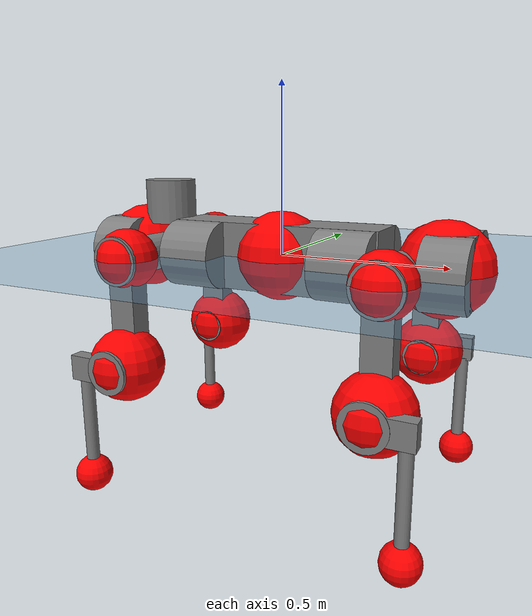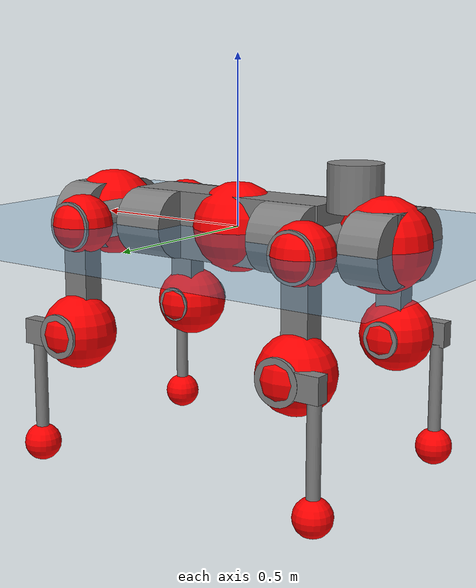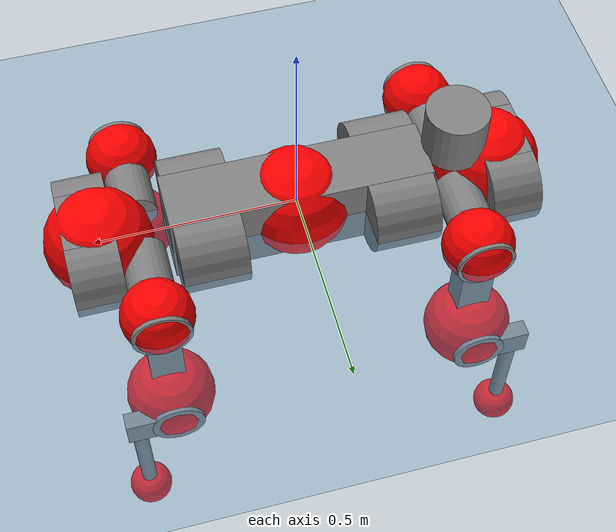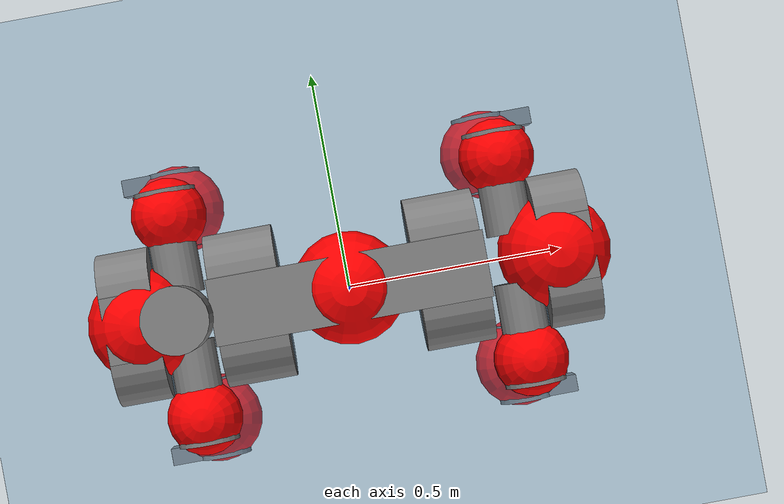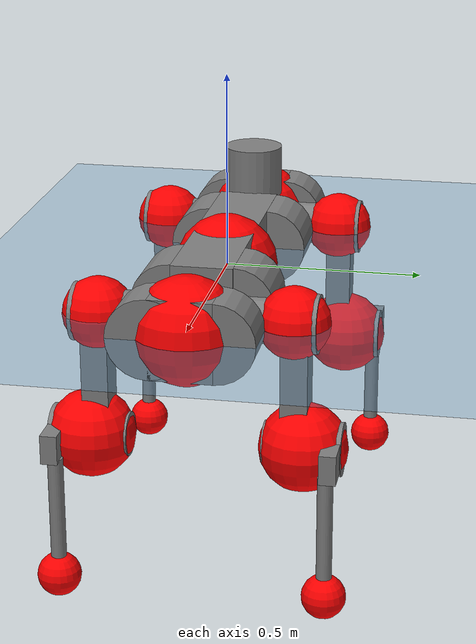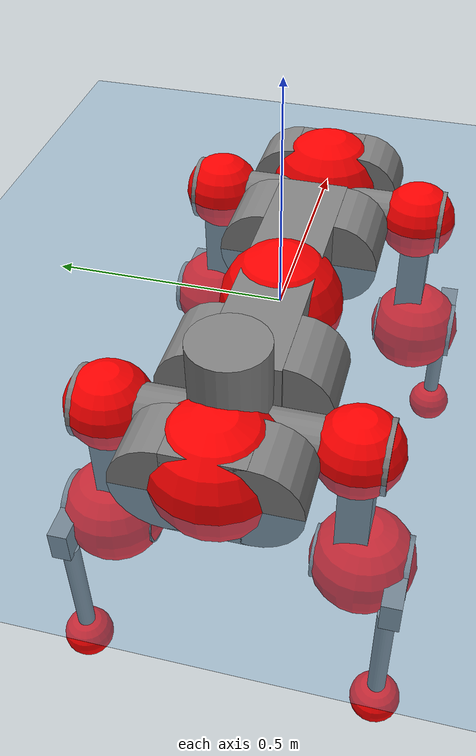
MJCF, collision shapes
<mujoco model="anymal_c">
  <compiler angle="radian" assetdir="assets" balanceinertia="true" inertiafromgeom="false"/>

  <option timestep="0.005" density="1.2" viscosity="2e-05"/>

  <size nkey="1"/>

  <visual>
    <quality shadowsize="8192"/>
    <map shadowclip="0.5"/>
  </visual>

  <default>
    <default class="/">
      <material specular="0" shininess="0.25"/>
      <geom contype="0" conaffinity="0" group="1" solref="-1000 -80"/>
      <site size="0.01 0.005 0.005" group="5"/>
      <general forcelimited="true" forcerange="-80 80" biastype="affine" gainprm="80" biasprm="0 -80 -2"/>
      <default class="anymal_c">
        <joint armature="0.01" damping="0.01" frictionloss="0.1"/>
        <default class="visual">
          <geom type="mesh" group="2"/>
          <default class="visual_zflip"/>
        </default>
        <default class="collision">
          <geom type="cylinder" group="3"/>
          <default class="foot">
            <geom size="0.03 0 0" type="sphere" condim="6" priority="1" friction="0.8 0.02 0.01" solimp="0.015 1 0.03"/>
          </default>
        </default>
      </default>
      <default class="reward_collision_sphere">
        <geom group="5" rgba="1 0 0 1"/>
      </default>
    </default>
  </default>

  <asset>
    <texture type="skybox" colorspace="auto" name="//unnamed_texture_0" builtin="gradient" rgb1="0.95 0.95 0.95" rgb2="0.95 0.95 0.95" width="100" height="600"/>
    <texture type="2d" colorspace="auto" name="texplane" builtin="checker" rgb1="0.345 0.575 0.748" rgb2="0.345 0.575 0.748" markrgb="1 1 1" width="512" height="512"/>
    <texture type="2d" colorspace="linear" name="base" file="base.png"/>
    <texture type="2d" colorspace="linear" name="top_shell" file="top_shell.png"/>
    <texture type="2d" colorspace="linear" name="bottom_shell" file="bottom_shell.png"/>
    <texture type="2d" colorspace="linear" name="remote" file="remote.png"/>
    <texture type="2d" colorspace="linear" name="hatch" file="hatch.png"/>
    <texture type="2d" colorspace="linear" name="handle" file="handle.png"/>
    <texture type="2d" colorspace="linear" name="face" file="face.png"/>
    <texture type="2d" colorspace="linear" name="battery" file="battery.png"/>
    <texture type="2d" colorspace="linear" name="lidar_cage" file="lidar_cage.png"/>
    <texture type="2d" colorspace="linear" name="depth_camera" file="depth_camera.png"/>
    <texture type="2d" colorspace="linear" name="wide_angle_camera" file="wide_angle_camera.png"/>
    <texture type="2d" colorspace="linear" name="lidar" file="lidar.png"/>
    <texture type="2d" colorspace="linear" name="drive" file="drive.png"/>
    <texture type="2d" colorspace="linear" name="hip_l" file="hip_l.png"/>
    <texture type="2d" colorspace="linear" name="shank_l" file="shank_l.png"/>
    <texture type="2d" colorspace="linear" name="foot" file="foot.png"/>
    <texture type="2d" colorspace="linear" name="thigh" file="thigh.png"/>
    <texture type="2d" colorspace="linear" name="shank_r" file="shank_r.png"/>
    <texture type="2d" colorspace="linear" name="hip_r" file="hip_r.png"/>
    <material name="MatPlane" class="/" texture="texplane" texuniform="true" texrepeat="2 2" specular="0.9" shininess="0.5"/>
    <material name="black_plastic" class="/" rgba="0.007 0.007 0.007 1"/>
    <material name="green" class="/" rgba="0.052 0.178 0.033 1"/>
    <material name="red" class="/" rgba="0.178 0.006 0.005 1"/>
    <material name="yellow" class="/" rgba="0.178 0.119 0.006 1"/>
    <material name="lwl" class="/" rgba="0.8 0.8 0.8 1"/>
    <material name="base" class="/" texture="base"/>
    <material name="top_shell" class="/" texture="top_shell"/>
    <material name="bottom_shell" class="/" texture="bottom_shell"/>
    <material name="hip_l" class="/" texture="hip_l"/>
    <material name="thigh" class="/" texture="thigh"/>
    <material name="shank_l" class="/" texture="shank_l"/>
    <material name="foot" class="/" texture="foot"/>
    <material name="hip_r" class="/" texture="hip_r"/>
    <material name="shank" class="/" texture="shank_r"/>
    <material name="hatch" class="/" texture="hatch"/>
    <material name="remote" class="/" texture="remote"/>
    <material name="handle" class="/" texture="handle"/>
    <material name="face" class="/" texture="face"/>
    <material name="depth_camera" class="/" texture="depth_camera"/>
    <material name="wide_angle_camera" class="/" texture="wide_angle_camera"/>
    <material name="battery" class="/" texture="battery"/>
    <material name="lidar_cage" class="/" texture="lidar_cage"/>
    <material name="lidar" class="/" texture="lidar"/>
    <material name="drive" class="/" texture="drive"/>
    <mesh name="base_0" class="/" file="base_0.obj"/>
    <mesh name="base_1" class="/" file="base_1.obj"/>
    <mesh name="base_2" class="/" file="base_2.obj"/>
    <mesh name="base_3" class="/" file="base_3.obj"/>
    <mesh name="base_4" class="/" file="base_4.obj"/>
    <mesh name="base_5" class="/" file="base_5.obj"/>
    <mesh name="top_shell" class="/" file="top_shell.obj"/>
    <mesh name="bottom_shell" class="/" file="bottom_shell.obj"/>
    <mesh name="remote" class="/" file="remote.obj"/>
    <mesh name="handle" class="/" file="handle.obj"/>
    <mesh name="face" class="/" file="face.obj"/>
    <mesh name="wide_angle_camera" class="/" file="wide_angle_camera.obj"/>
    <mesh name="depth_camera" class="/" file="depth_camera.obj"/>
    <mesh name="battery" class="/" file="battery.obj"/>
    <mesh name="lidar_cage" class="/" file="lidar_cage.obj"/>
    <mesh name="lidar" class="/" file="lidar.obj"/>
    <mesh name="drive" class="/" file="drive.obj"/>
    <mesh name="hip_l" class="/" file="hip_l.obj"/>
    <mesh name="thigh" class="/" file="thigh.obj"/>
    <mesh name="shank_l" class="/" file="shank_l.obj"/>
    <mesh name="foot" class="/" file="foot.obj"/>
    <mesh name="hip_r" class="/" file="hip_r.obj"/>
    <mesh name="hatch" class="/" file="hatch.obj"/>
    <mesh name="shank_r" class="/" file="shank_r.obj"/>
  </asset>

  <worldbody>
    <geom name="floor" class="/" size="100 100 0.125" type="plane" group="0" material="MatPlane"/>
    <light name="toplight_shadow" class="/" pos="0 0 5" dir="0.0990148 0.0990148 -0.990148" type="directional" ambient="0.04 0.04 0.04" diffuse="0.55 0.55 0.55" specular="0.12 0.12 0.12"/>
    <light name="toplight_fill" class="/" pos="0 0 5" dir="0.0990148 0.0990148 -0.990148" type="directional" castshadow="false" ambient="0.04 0.04 0.04" diffuse="0.3 0.3 0.3" specular="0.08 0.08 0.08"/>
    <body name="trunk" childclass="anymal_c" pos="-0.000477884 -0.00211387 -0.000828619" quat="1 7.22765e-06 -1.47371e-06 2.56211e-05">
      <inertial pos="0.00404633 -0.00174981 0.0542431" quat="0.501864 0.497951 0.498762 0.501411" mass="25.5425" diaginertia="0.914488 1.10506 0.365801"/>
      <joint name="//unnamed_joint_0" type="free" armature="0" damping="0" frictionloss="0"/>
      <geom name="//unnamed_geom_1" class="visual" material="green" mesh="base_0"/>
      <geom name="//unnamed_geom_2" class="visual" material="yellow" mesh="base_1"/>
      <geom name="//unnamed_geom_3" class="visual" material="red" mesh="base_2"/>
      <geom name="//unnamed_geom_4" class="visual" material="black_plastic" mesh="base_3"/>
      <geom name="//unnamed_geom_5" class="visual" material="lwl" mesh="base_4"/>
      <geom name="//unnamed_geom_6" class="visual" material="base" mesh="base_5"/>
      <geom name="trunk_1" class="collision" size="0.321763 0.0776669 0.0998575" type="box"/>
      <geom name="trunk_2" class="collision" size="0.0998575 0.0804407" pos="0.23535 0.079466 0" quat="0.707107 0 0.707107 0"/>
      <geom name="trunk_3" class="collision" size="0.0998575 0.0804407" pos="-0.23535 0.079466 0" quat="0.707107 0 0.707107 0"/>
      <geom name="trunk_4" class="collision" size="0.0998575 0.0804407" pos="0.23535 -0.079466 0" quat="0.707107 0 0.707107 0"/>
      <geom name="trunk_5" class="collision" size="0.0998575 0.0804407" pos="-0.23535 -0.079466 0" quat="0.707107 0 0.707107 0"/>
      <geom name="//unnamed_geom_12" class="visual" material="top_shell" mesh="top_shell"/>
      <geom name="//unnamed_geom_13" class="visual" material="bottom_shell" mesh="bottom_shell"/>
      <geom name="//unnamed_geom_14" class="visual" material="remote" mesh="remote"/>
      <geom name="//unnamed_geom_15" class="visual" material="handle" mesh="handle"/>
      <geom name="//unnamed_geom_16" class="visual" pos="0.448518 0 0" quat="1 0 0 0" material="face" mesh="face"/>
      <geom name="trunk_6" class="collision" size="0.061024 0.0776669 0.0998575" pos="0.508031 0 0" type="box"/>
      <geom name="//unnamed_geom_18" class="collision" size="0.0998575 0.061024" pos="0.508031 0.079466 0" quat="0.707107 0 0.707107 0"/>
      <geom name="//unnamed_geom_19" class="collision" size="0.0998575 0.061024" pos="0.508031 -0.079466 0" quat="0.707107 0 0.707107 0"/>
      <geom name="//unnamed_geom_20" class="visual" pos="0.499538 0 -0.0326715" quat="0.965926 0 0.258819 0" material="depth_camera" mesh="depth_camera"/>
      <geom name="//unnamed_geom_21" class="visual" pos="0.555102 0 0.0166359" material="wide_angle_camera" mesh="wide_angle_camera"/>
      <geom name="//unnamed_geom_22" class="visual_zflip" pos="-0.448518 0 0" quat="0 0 0 1" material="face" mesh="face"/>
      <geom name="trunk_7" class="collision" size="0.061024 0.0776669 0.0998575" pos="-0.508031 0 0" quat="0 0 0 1" type="box"/>
      <geom name="//unnamed_geom_24" class="collision" size="0.0998575 0.061024" pos="-0.508031 -0.079466 0" quat="0 -0.707107 0 0.707107"/>
      <geom name="//unnamed_geom_25" class="collision" size="0.0998575 0.061024" pos="-0.508031 0.079466 0" quat="0 -0.707107 0 0.707107"/>
      <geom name="//unnamed_geom_26" class="visual" pos="-0.499538 0 -0.0326715" quat="0 -0.258819 0 0.965926" material="depth_camera" mesh="depth_camera"/>
      <geom name="//unnamed_geom_27" class="visual_zflip" pos="-0.555102 0 0.0166359" quat="0 0 0 1" material="wide_angle_camera" mesh="wide_angle_camera"/>
      <geom name="//unnamed_geom_28" class="visual" material="battery" mesh="battery"/>
      <geom name="//unnamed_geom_29" class="visual" pos="0 0.0874983 0.0320608" quat="0.683013 -0.183013 0.183013 0.683013" material="depth_camera" mesh="depth_camera"/>
      <geom name="//unnamed_geom_30" class="visual" pos="0 -0.0874983 0.0320608" quat="0.683013 0.183013 0.183013 -0.683013" material="depth_camera" mesh="depth_camera"/>
      <geom name="//unnamed_geom_31" class="visual" pos="-0.393873 0 0.0816794" quat="1 0 0 0" material="lidar_cage" mesh="lidar_cage"/>
      <geom name="trunk_8" class="collision" size="0.0776669 0.0665716" pos="-0.393873 0 0.148356"/>
      <geom name="//unnamed_geom_33" class="visual" pos="-0.393873 2.08848e-05 0.158025" quat="0.707107 0 0 -0.707107" material="lidar" mesh="lidar"/>
      <geom name="//unnamed_geom_34" class="visual" pos="0.324513 0.118055 4.13038e-10" quat="0.258819 0.965926 0 0" material="drive" mesh="drive"/>
      <geom name="//unnamed_geom_35" class="visual" pos="0.324513 -0.118055 -4.13038e-10" quat="0.258819 -0.965926 0 0" material="drive" mesh="drive"/>
      <geom name="//unnamed_geom_36" class="visual" pos="-0.324513 0.118055 -4.13038e-10" quat="0 0 0.965926 -0.258819" material="drive" mesh="drive"/>
      <geom name="//unnamed_geom_37" class="visual" pos="-0.324513 -0.118055 4.13038e-10" quat="0 0 -0.965926 -0.258819" material="drive" mesh="drive"/>
      <geom name="//unnamed_geom_38" class="visual" pos="0.12552 0 0.0811238" quat="1 0 0 0" material="hatch" mesh="hatch"/>
      <geom name="//unnamed_geom_39" class="reward_collision_sphere" size="0.133143"/>
      <geom name="//unnamed_geom_40" class="reward_collision_sphere" size="0.133143" pos="0.486931 0 0"/>
      <geom name="//unnamed_geom_41" class="reward_collision_sphere" size="0.133143" pos="-0.486931 0 0"/>
      <site name="imu" pos="0.280472 0.0235118 0.0408266" size="0.0110953"/>
      <camera name="track" pos="0 -2.27046 0" quat="0.707107 0.707107 0 0" mode="trackcom"/>
      <camera name="ego_camera" pos="0.486931 0 -0.0444514" quat="-0.5 -0.5 0.5 0.5"/>
      <body name="LF_HIP" pos="0.327495 0.117763 0.00112469" quat="0.259316 0.965792 0.000533002 -0.000608359">
        <inertial pos="0.0615252 -0.016827 -0.00634818" quat="-0.128372 0.711973 -0.135361 0.676973" mass="3.72776" diaginertia="0.00868891 0.00906646 0.00552891"/>
        <joint name="LF_HAA" pos="0 0 0" axis="0.999996 0.000236235 0.00292466" stiffness="0.00311843" range="-0.732308 0.543917" armature="0.0115423" damping="0" frictionloss="0.125353"/>
        <geom name="//unnamed_geom_42" class="visual" pos="0 2.42971e-05 -3.99078e-06" quat="0.258819 -0.965926 0 0" material="hip_l" mesh="hip_l"/>
        <geom name="//unnamed_geom_43" class="visual" pos="0.0648159 -0.0792297 -0.0455662" quat="0.183013 -0.683013 0.683013 0.183013" material="drive" mesh="drive"/>
        <geom name="//unnamed_geom_44" class="collision" size="0.0554764 0.0776669" pos="0.0648159 -0.0135771 -0.00767342" quat="-0.353553 -0.612372 0.612372 -0.353553"/>
        <body name="LF_THIGH" pos="0.0654478 -0.0828684 -0.0475298" quat="0.182561 -0.683675 0.682304 0.183632">
          <inertial pos="0.0359129 0.00281325 -0.272954" quat="0.992764 -0.00472624 -0.0783367 0.0908858" mass="4.19296" diaginertia="0.0439129 0.0555489 0.00684145"/>
          <joint name="LF_HFE" pos="0 0 0" axis="0.999956 0.00896447 0.00285654" stiffness="0.000253364" range="-3.09138 3.15443" armature="0.0121137" damping="0.0141092" frictionloss="0.124277"/>
          <geom name="//unnamed_geom_45" class="visual" pos="-0.00105766 -1.66662e-06 0" quat="0.707107 0 0 -0.707107" material="thigh" mesh="thigh"/>
          <geom name="//unnamed_geom_46" class="collision" size="0.0721193 0.0443811" pos="0.0432828 0 0" quat="0.5 0.5 -0.5 -0.5"/>
          <geom name="//unnamed_geom_47" class="collision" size="0.0416073 0.0332858 0.156792" pos="0.0324621 0 -0.15704" quat="0.707107 0 0 -0.707107" type="box"/>
          <geom name="//unnamed_geom_48" class="visual" pos="0.108532 0 -0.316716" quat="1 0 0 0" material="drive" mesh="drive"/>
          <geom name="//unnamed_geom_49" class="collision" size="0.0554764 0.0776669" pos="0.0327867 0 -0.316716" quat="0.707107 0 0.707107 0"/>
          <geom name="//unnamed_geom_50" class="reward_collision_sphere" size="0.0887622" pos="0.0270517 0 0"/>
          <body name="LF_SHANK" pos="0.106314 -0.000805898 -0.319538" quat="0.999999 3.95802e-06 -0.00112048 0.000921318">
            <inertial pos="0.00860668 -0.0693414 -0.0895908" quat="0.99302 -0.115278 -0.0033402 -0.0247321" mass="0.81211" diaginertia="0.0147415 0.0176101 0.00190171"/>
            <joint name="LF_KFE" pos="0 0 0" axis="0.999971 0.00759163 -0.000617141" stiffness="0.00033573" range="-3.14157 3.14183" armature="0.0096059" damping="0.0101464" frictionloss="0.109796"/>
            <geom name="//unnamed_geom_51" class="visual" pos="-0.000344879 -0.00183891 0" quat="0.707107 0 0 -0.707107" material="shank_l" mesh="shank_l"/>
            <geom name="LF_kfe_act" class="collision" size="0.0665716 0.0221905" pos="0.0216414 0 0" quat="0.5 0.5 -0.5 -0.5"/>
            <geom name="//unnamed_geom_53" class="collision" size="0.0637967 0.0374465 0.021081" pos="0.0216414 -0.0652745 0" quat="0.5 0.5 -0.5 -0.5" type="box"/>
            <geom name="//unnamed_geom_54" class="visual" pos="0.0141211 -0.100436 -0.375581" quat="0.382683 0 0 -0.92388" material="foot" mesh="foot"/>
            <geom name="LF_calf" class="collision" size="0.0194167 0.156723" pos="0.014121 -0.0998433 -0.18779" quat="0.707107 0 0 -0.707107"/>
            <geom name="LF_foot" class="foot" size="0.0303468" pos="0.014121 -0.0998433 -0.350577" quat="0.707107 0 0 -0.707107"/>
            <geom name="//unnamed_geom_57" class="reward_collision_sphere" size="0.110953" pos="-0.0541035 0 0"/>
            <geom name="//unnamed_geom_58" class="reward_collision_sphere" size="0.0554764" pos="0.014121 -0.0998433 -0.350577"/>
            <site name="LF_foot" class="foot" pos="0.014121 -0.0998433 -0.350577" quat="0.707107 0 0 -0.707107" size="0.0110953"/>
          </body>
        </body>
      </body>
      <body name="RF_HIP" pos="0.323747 -0.120169 -0.00267176" quat="0.258591 -0.965987 -0.000114292 0.000579101">
        <inertial pos="0.0591951 0.0189299 -0.00813471" quat="0.135604 0.682005 0.130371 0.706742" mass="3.69196" diaginertia="0.00838913 0.00925109 0.00564889"/>
        <joint name="RF_HAA" pos="0 0 0" axis="0.999894 -0.00956254 -0.0109408" range="-0.503133 0.730584" armature="0.012084" damping="0.0202242" frictionloss="0.123285"/>
        <geom name="//unnamed_geom_59" class="visual" pos="0 -2.42969e-05 -3.99077e-06" quat="0.258819 0.965926 0 0" material="hip_r" mesh="hip_r"/>
        <geom name="//unnamed_geom_60" class="visual" pos="0.0648159 0.0792297 -0.0455662" quat="0.183013 0.683013 0.683013 -0.183013" material="drive" mesh="drive"/>
        <geom name="//unnamed_geom_61" class="collision" size="0.0554764 0.0776669" pos="0.0648159 0.0135771 -0.00767342" quat="-0.353553 0.612372 0.612372 0.353553"/>
        <body name="RF_THIGH" pos="0.0656467 0.0814915 -0.0436198" quat="0.182788 0.684292 0.681778 -0.18306">
          <inertial pos="0.0306599 0.000306746 -0.271879" quat="0.991642 -0.00520958 -0.0944131 0.0877789" mass="4.41654" diaginertia="0.0453228 0.0574905 0.00702419"/>
          <joint name="RF_HFE" pos="0 0 0" axis="0.999984 -0.00516207 -0.00238031" range="-3.15348 3.13623" armature="0.0107668" damping="0.0187409" frictionloss="0.110133"/>
          <geom name="//unnamed_geom_62" class="visual" pos="-0.00105766 -1.66662e-06 0" quat="0.707107 0 0 -0.707107" material="thigh" mesh="thigh"/>
          <geom name="//unnamed_geom_63" class="collision" size="0.0721193 0.0443811" pos="0.0432828 0 0" quat="0.5 0.5 0.5 0.5"/>
          <geom name="//unnamed_geom_64" class="collision" size="0.0416073 0.0332858 0.156792" pos="0.0324621 0 -0.15704" quat="0.707107 0 0 0.707107" type="box"/>
          <geom name="//unnamed_geom_65" class="visual" pos="0.108532 0 -0.316716" quat="1 0 0 0" material="drive" mesh="drive"/>
          <geom name="//unnamed_geom_66" class="collision" size="0.0554764 0.0776669" pos="0.0327867 0 -0.316716" quat="0.707107 0 0.707107 0"/>
          <geom name="//unnamed_geom_67" class="reward_collision_sphere" size="0.0887622" pos="0.0270517 0 0"/>
          <body name="RF_SHANK" pos="0.107691 -0.000360742 -0.319305" quat="1 -8.53212e-05 -0.000737247 0.000153521">
            <inertial pos="0.00860346 0.0700938 -0.086952" quat="0.992082 0.124492 0.00411308 0.0160973" mass="0.796746" diaginertia="0.0152991 0.0175471 0.00194826"/>
            <joint name="RF_KFE" pos="0 0 0" axis="0.999999 0.000367036 -0.00146193" range="-3.12074 3.14416" armature="0.0114442" damping="0.0130139" frictionloss="0.102464"/>
            <geom name="//unnamed_geom_68" class="visual" pos="-0.000344877 0.00183891 0" quat="0.707107 0 0 0.707107" material="shank" mesh="shank_r"/>
            <geom name="RF_kfe_act" class="collision" size="0.0665716 0.0221905" pos="0.0216414 0 0" quat="0.5 0.5 0.5 0.5"/>
            <geom name="//unnamed_geom_70" class="collision" size="0.0637967 0.0374465 0.021081" pos="0.0216414 0.0652745 0" quat="0.5 0.5 0.5 0.5" type="box"/>
            <geom name="//unnamed_geom_71" class="visual" pos="0.0141209 0.100436 -0.375581" quat="0.382683 0 0 0.92388" material="foot" mesh="foot"/>
            <geom name="RF_calf" class="collision" size="0.0194167 0.156723" pos="0.014121 0.0998433 -0.18779" quat="0.707107 0 0 0.707107"/>
            <geom name="RF_foot" class="foot" size="0.0257924" pos="0.014121 0.0998433 -0.350577" quat="0.707107 0 0 0.707107"/>
            <geom name="//unnamed_geom_74" class="reward_collision_sphere" size="0.110953" pos="-0.0541035 0 0"/>
            <geom name="//unnamed_geom_75" class="reward_collision_sphere" size="0.0554764" pos="0.014121 0.0998433 -0.350577"/>
            <site name="RF_foot" class="foot" pos="0.014121 0.0998433 -0.350577" quat="0.707107 0 0 0.707107" size="0.0110953"/>
          </body>
        </body>
      </body>
      <body name="LH_HIP" pos="-0.323647 0.118671 0.00290363" quat="0.00115832 -0.000730787 0.965849 -0.259102">
        <inertial pos="0.0616027 0.0154742 -0.00646731" quat="0.143565 0.679199 0.125497 0.708751" mass="4.0065" diaginertia="0.00902129 0.00959418 0.00573094"/>
        <joint name="LH_HAA" pos="0 0 0" axis="0.99999 -0.00197403 -0.00403366" range="-0.477644 0.672758" armature="0.0113016" damping="0.00241386" frictionloss="0.114435"/>
        <geom name="//unnamed_geom_76" class="visual" pos="0 -2.42969e-05 -3.99077e-06" quat="-0.258819 -0.965926 0 0" material="hip_r" mesh="hip_r"/>
        <geom name="//unnamed_geom_77" class="visual" pos="0.0648159 0.0792297 -0.0455662" quat="0.183013 0.683013 0.683013 -0.183013" material="drive" mesh="drive"/>
        <geom name="//unnamed_geom_78" class="collision" size="0.0554764 0.0776669" pos="0.0648159 0.0135771 -0.00767342" quat="-0.353553 0.612372 0.612372 0.353553"/>
        <body name="LH_THIGH" pos="0.0615858 0.0846204 -0.046095" quat="0.182504 0.683485 0.682765 -0.182682">
          <inertial pos="0.0337076 0.000468723 -0.273348" quat="0.993974 -0.0121589 -0.0697398 0.0836948" mass="4.28824" diaginertia="0.0453303 0.0598893 0.00737372"/>
          <joint name="LH_HFE" pos="0 0 0" axis="1 0.000504433 -0.000118941" stiffness="0.00263992" range="-3.18349 3.19468" armature="0.00985198" damping="0" frictionloss="0.115282"/>
          <geom name="//unnamed_geom_79" class="visual" pos="-0.00105766 -1.66662e-06 0" quat="0.707107 0 0 -0.707107" material="thigh" mesh="thigh"/>
          <geom name="//unnamed_geom_80" class="collision" size="0.0721193 0.0443811" pos="0.0432828 0 0" quat="0.5 0.5 -0.5 -0.5"/>
          <geom name="//unnamed_geom_81" class="collision" size="0.0416073 0.0332858 0.156792" pos="0.0324621 0 -0.15704" quat="0.707107 0 0 -0.707107" type="box"/>
          <geom name="//unnamed_geom_82" class="visual" pos="0.108532 0 -0.316716" quat="1 0 0 0" material="drive" mesh="drive"/>
          <geom name="//unnamed_geom_83" class="collision" size="0.0554764 0.0776669" pos="0.0327867 0 -0.316716" quat="0.707107 0 0.707107 0"/>
          <geom name="//unnamed_geom_84" class="reward_collision_sphere" size="0.0887622" pos="0.0270517 0 0"/>
          <body name="LH_SHANK" pos="0.105934 0.000804126 -0.314661" quat="1 8.86568e-05 -0.000515561 0.000591818">
            <inertial pos="0.00678231 0.0692357 -0.0895431" quat="0.99309 0.113527 1.41901e-05 0.0297325" mass="0.859978" diaginertia="0.0158661 0.0182482 0.00196291"/>
            <joint name="LH_KFE" pos="0 0 0" axis="0.999898 0.0132317 -0.00529524" stiffness="0.000848849" range="-3.14427 3.09643" armature="0.0106558" damping="0" frictionloss="0.112955"/>
            <geom name="//unnamed_geom_85" class="visual" pos="-0.000344877 0.00183891 0" quat="-0.707107 0 0 -0.707107" material="shank" mesh="shank_r"/>
            <geom name="LH_kfe_act" class="collision" size="0.0665716 0.0221905" pos="0.0216414 0 0" quat="0.5 0.5 -0.5 -0.5"/>
            <geom name="//unnamed_geom_87" class="collision" size="0.0637967 0.0374465 0.021081" pos="0.0216414 0.0652745 0" quat="0.5 0.5 -0.5 -0.5" type="box"/>
            <geom name="//unnamed_geom_88" class="visual" pos="0.0141209 0.100436 -0.375581" quat="-0.382683 0 0 -0.92388" material="foot" mesh="foot"/>
            <geom name="LH_calf" class="collision" size="0.0194167 0.156723" pos="0.014121 0.0998433 -0.18779" quat="0.707107 0 0 -0.707107"/>
            <geom name="LH_foot" class="foot" size="0.0372232" pos="0.014121 0.0998433 -0.350577" quat="0.707107 0 0 -0.707107"/>
            <geom name="//unnamed_geom_91" class="reward_collision_sphere" size="0.110953" pos="-0.0541035 0 0"/>
            <geom name="//unnamed_geom_92" class="reward_collision_sphere" size="0.0554764" pos="0.014121 0.0998433 -0.350577"/>
            <site name="LH_foot" class="foot" pos="0.014121 0.0998433 -0.350577" quat="0.707107 0 0 -0.707107" size="0.0110953"/>
          </body>
        </body>
      </body>
      <body name="RH_HIP" pos="-0.32285 -0.118816 -0.00136972" quat="4.97538e-06 -0.000506653 -0.966117 -0.258104">
        <inertial pos="0.0628195 -0.0158598 -0.0120055" quat="-0.125972 0.706325 -0.132984 0.683778" mass="3.88285" diaginertia="0.00924317 0.00988311 0.00582803"/>
        <joint name="RH_HAA" pos="0 0 0" axis="0.999982 0.00579453 0.00126118" stiffness="0.00672995" range="-0.71866 0.474689" armature="0.0112915" damping="0.00808263" frictionloss="0.107443"/>
        <geom name="//unnamed_geom_93" class="visual" pos="0 2.42971e-05 -3.99078e-06" quat="-0.258819 0.965926 0 0" material="hip_l" mesh="hip_l"/>
        <geom name="//unnamed_geom_94" class="visual" pos="0.0648159 -0.0792297 -0.0455662" quat="-0.183013 0.683013 -0.683013 -0.183013" material="drive" mesh="drive"/>
        <geom name="//unnamed_geom_95" class="collision" size="0.0554764 0.0776669" pos="0.0648159 -0.0135771 -0.00767342" quat="0.353553 0.612372 -0.612372 0.353553"/>
        <body name="RH_THIGH" pos="0.0635476 -0.0802617 -0.0451681" quat="-0.183298 0.683064 -0.682966 -0.182709">
          <inertial pos="0.0332755 -0.000896943 -0.270118" quat="0.993517 -0.00303043 -0.0764199 0.0841148" mass="3.9991" diaginertia="0.0428416 0.053822 0.00683342"/>
          <joint name="RH_HFE" pos="0 0 0" axis="0.999988 -0.00371883 -0.00312567" range="-3.1313 3.20065" armature="0.0116667" damping="0.00648831" frictionloss="0.11324"/>
          <geom name="//unnamed_geom_96" class="visual" pos="-0.00105766 -1.66662e-06 0" quat="0.707107 0 0 -0.707107" material="thigh" mesh="thigh"/>
          <geom name="//unnamed_geom_97" class="collision" size="0.0721193 0.0443811" pos="0.0432828 0 0" quat="0.5 0.5 0.5 0.5"/>
          <geom name="//unnamed_geom_98" class="collision" size="0.0416073 0.0332858 0.156792" pos="0.0324621 0 -0.15704" quat="0.707107 0 0 0.707107" type="box"/>
          <geom name="//unnamed_geom_99" class="visual" pos="0.108532 0 -0.316716" quat="1 0 0 0" material="drive" mesh="drive"/>
          <geom name="//unnamed_geom_100" class="collision" size="0.0554764 0.0776669" pos="0.0327867 0 -0.316716" quat="0.707107 0 0.707107 0"/>
          <geom name="//unnamed_geom_101" class="reward_collision_sphere" size="0.0887622" pos="0.0270517 0 0"/>
          <body name="RH_SHANK" pos="0.109909 0.00144839 -0.31597" quat="0.999999 -0.000334985 -0.000553998 0.00129649">
            <inertial pos="0.00528655 -0.0697198 -0.0914311" quat="0.994018 -0.105227 -0.00575052 -0.0286751" mass="0.812568" diaginertia="0.0152257 0.0170044 0.00191183"/>
            <joint name="RH_KFE" pos="0 0 0" axis="0.999993 -0.00351909 -0.000905775" range="-3.16808 3.15111" armature="0.0105143" damping="0.00774312" frictionloss="0.110786"/>
            <geom name="//unnamed_geom_102" class="visual" pos="-0.000344879 -0.00183891 0" quat="0.707107 0 0 -0.707107" material="shank_l" mesh="shank_l"/>
            <geom name="RH_kfe_act" class="collision" size="0.0665716 0.0221905" pos="0.0216414 0 0" quat="0.5 0.5 0.5 0.5"/>
            <geom name="//unnamed_geom_104" class="collision" size="0.0637967 0.0374465 0.021081" pos="0.0216414 -0.0652745 0" quat="0.5 0.5 0.5 0.5" type="box"/>
            <geom name="//unnamed_geom_105" class="visual" pos="0.0141211 -0.100436 -0.375581" quat="0.382683 0 0 -0.92388" material="foot" mesh="foot"/>
            <geom name="RH_calf" class="collision" size="0.0194167 0.156723" pos="0.014121 -0.0998433 -0.18779" quat="0.707107 0 0 0.707107"/>
            <geom name="RH_foot" class="foot" size="0.0281115" pos="0.014121 -0.0998433 -0.350577" quat="0.707107 0 0 0.707107"/>
            <geom name="//unnamed_geom_108" class="reward_collision_sphere" size="0.110953" pos="-0.0541035 0 0"/>
            <geom name="//unnamed_geom_109" class="reward_collision_sphere" size="0.0554764" pos="0.014121 -0.0998433 -0.350577"/>
            <site name="RH_foot" class="foot" pos="0.014121 -0.0998433 -0.350577" quat="0.707107 0 0 0.707107" size="0.0110953"/>
          </body>
        </body>
      </body>
    </body>
  </worldbody>

  <contact>
    <pair class="/" geom1="floor" geom2="LF_foot" name="//unnamed_contact_0"/>
    <pair class="/" geom1="floor" geom2="RF_foot" name="//unnamed_contact_1"/>
    <pair class="/" geom1="floor" geom2="LH_foot" name="//unnamed_contact_2"/>
    <pair class="/" geom1="floor" geom2="RH_foot" name="//unnamed_contact_3"/>
  </contact>

  <actuator>
    <general name="LF_HAA" class="/" joint="LF_HAA" forcerange="-86.6382 86.6382" gainprm="90.8588" biasprm="0 -90.8588 -2.37631"/>
    <general name="LF_HFE" class="/" joint="LF_HFE" forcerange="-79.7282 79.7282" gainprm="90.8588" biasprm="0 -90.8588 -2.37631"/>
    <general name="LF_KFE" class="/" joint="LF_KFE" forcerange="-85.5985 85.5985" gainprm="90.8588" biasprm="0 -90.8588 -2.37631"/>
    <general name="RF_HAA" class="/" joint="RF_HAA" forcerange="-91.1312 91.1312" gainprm="90.8588" biasprm="0 -90.8588 -2.37631"/>
    <general name="RF_HFE" class="/" joint="RF_HFE" forcerange="-91.6083 91.6083" gainprm="90.8588" biasprm="0 -90.8588 -2.37631"/>
    <general name="RF_KFE" class="/" joint="RF_KFE" forcerange="-97.8707 97.8707" gainprm="90.8588" biasprm="0 -90.8588 -2.37631"/>
    <general name="LH_HAA" class="/" joint="LH_HAA" forcerange="-88.2179 88.2179" gainprm="90.8588" biasprm="0 -90.8588 -2.37631"/>
    <general name="LH_HFE" class="/" joint="LH_HFE" forcerange="-91.6564 91.6564" gainprm="90.8588" biasprm="0 -90.8588 -2.37631"/>
    <general name="LH_KFE" class="/" joint="LH_KFE" forcerange="-80.9117 80.9117" gainprm="90.8588" biasprm="0 -90.8588 -2.37631"/>
    <general name="RH_HAA" class="/" joint="RH_HAA" forcerange="-88.3047 88.3047" gainprm="90.8588" biasprm="0 -90.8588 -2.37631"/>
    <general name="RH_HFE" class="/" joint="RH_HFE" forcerange="-89.9601 89.9601" gainprm="90.8588" biasprm="0 -90.8588 -2.37631"/>
    <general name="RH_KFE" class="/" joint="RH_KFE" forcerange="-88.7605 88.7605" gainprm="90.8588" biasprm="0 -90.8588 -2.37631"/>
  </actuator>

  <sensor>
    <gyro site="imu" name="imu_angular_velocity"/>
    <velocimeter site="imu" name="imu_linear_velocity"/>
    <framelinvel objtype="site" objname="LF_foot" name="LF_foot_global_linear_velocity"/>
    <framelinvel objtype="site" objname="RF_foot" name="RF_foot_global_linear_velocity"/>
    <framelinvel objtype="site" objname="LH_foot" name="LH_foot_global_linear_velocity"/>
    <framelinvel objtype="site" objname="RH_foot" name="RH_foot_global_linear_velocity"/>
  </sensor>

  <keyframe>
    <key name="home" qpos="0 0 0.55 1 0 0 0 0 0.4 -0.8 0 -0.4 0.8 0 -0.4 0.8 0 0.4 -0.8"/>
  </keyframe>
</mujoco>
